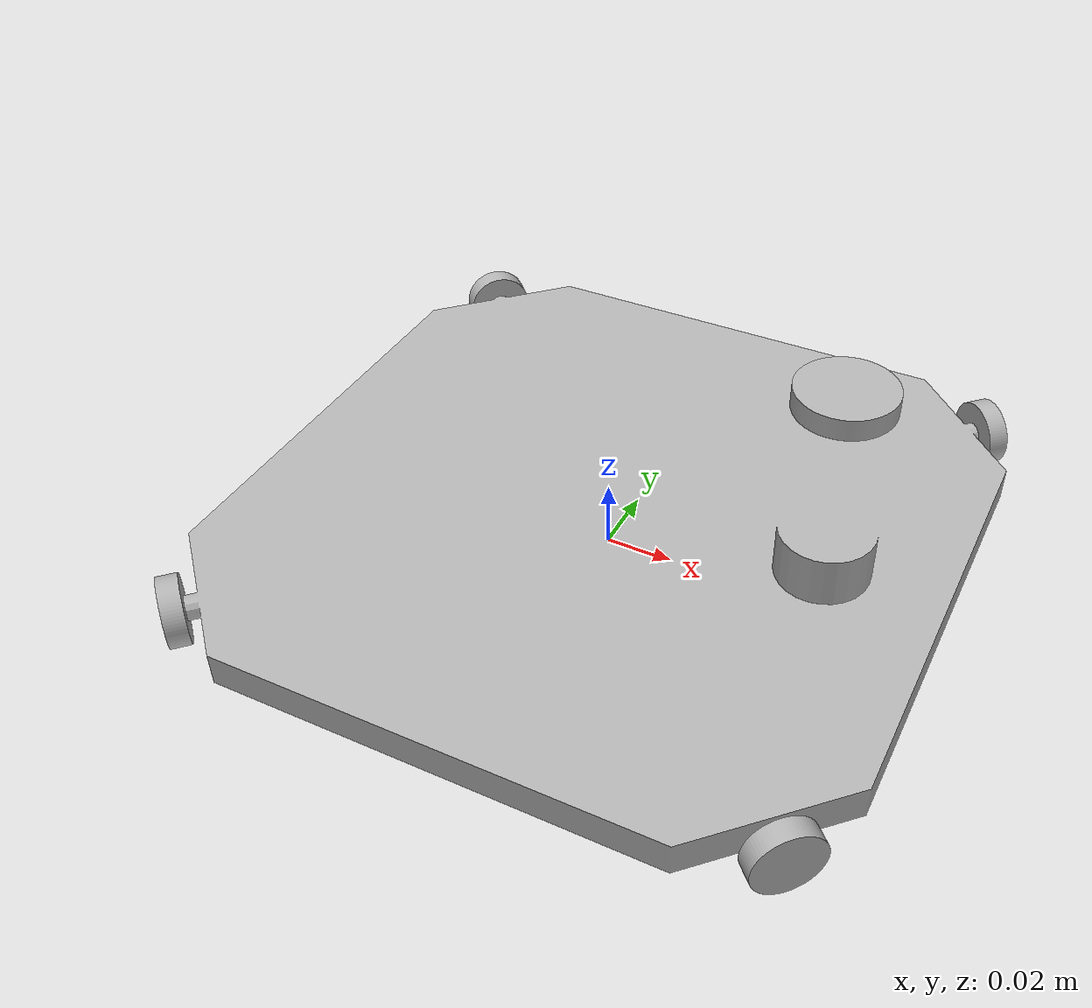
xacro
<?xml version="1.0" ?>
<robot name="fwomni" xmlns:xacro="http://www.ros.org/wiki/xacro">

<xacro:include filename="$(find fwomni)/urdf/materials.xacro" />
<xacro:include filename="$(find fwomni)/urdf/fwomni.trans" />
<xacro:include filename="$(find fwomni)/urdf/fwomni.gazebo" />

<link name="base_footprint">
</link>

<link name="base_link">
  <inertial>
    <origin xyz="0.0014510929492462577 -1.1820705140781097e-17 0.00527905633638948" rpy="0 0 0"/>
    <mass value="32.019927036453307"/>
    <inertia ixx="0.009026" iyy="0.009305" izz="0.018259" ixy="-0.0" iyz="-0.0" ixz="-5.4e-05"/>
  </inertial>
  <visual>
    <origin xyz="0 0 0.005" rpy="0 0 0"/>
    <geometry>
      <mesh filename="package://fwomni/meshes/base_link.stl" scale="0.001 0.001 0.001"/>
    </geometry>
    <material name="silver"/>
  </visual>
  <collision>
    <origin xyz="0 0 0.005" rpy="0 0 0"/>
    <geometry>
      <mesh filename="package://fwomni/meshes/base_link.stl" scale="0.001 0.001 0.001"/>
    </geometry>
  </collision>
</link>

<link name="rplidar">
  <inertial>
    <origin xyz="0.0 0.0 0.0030000000000000027" rpy="0 0 0"/>
    <mass value="0.02696735279859846"/>
    <inertia ixx="1e-06" iyy="1e-06" izz="2e-06" ixy="0.0" iyz="0.0" ixz="-0.0"/>
  </inertial>
  <visual>
    <origin xyz="-0.065 -0.0 -0.025" rpy="0 0 0"/>
    <geometry>
      <mesh filename="package://fwomni/meshes/rplidar.stl" scale="0.001 0.001 0.001"/>
    </geometry>
    <material name="silver"/>
  </visual>
  <collision>
    <origin xyz="-0.065 -0.0 -0.025" rpy="0 0 0"/>
    <geometry>
      <mesh filename="package://fwomni/meshes/rplidar.stl" scale="0.001 0.001 0.001"/>
    </geometry>
  </collision>
</link>

<link name="front_right">
  <inertial>
    <origin xyz="0.0030000000000000014 -2.220446049250313e-18 1.1779832153568586e-18" rpy="0 0 0"/>
    <mass value="0.01479690139840792"/>
    <inertia ixx="0.0" iyy="1e-06" izz="0.0" ixy="-0.0" iyz="-0.0" ixz="0.0"/>
  </inertial>
  <visual>
    <origin xyz="0 0 0" rpy="0 0 -1.5708"/>
    <geometry>
      <mesh filename="package://fwomni/meshes/wheel.stl" scale="0.001 0.001 0.001"/>
    </geometry>
    <material name="silver"/>
  </visual>
  <collision>
    <origin xyz="0 0 0" rpy="0 0 -1.5708"/>
    <geometry>
      <mesh filename="package://fwomni/meshes/wheel.stl" scale="0.001 0.001 0.001"/>
    </geometry>
  </collision>
</link>

<link name="front_left">
  <inertial>
    <origin xyz="0.0030000000000000014 -2.220446049250313e-18 1.1779832153568586e-18" rpy="0 0 0"/>
    <mass value="0.01479690139840792"/>
    <inertia ixx="0.0" iyy="1e-06" izz="0.0" ixy="-0.0" iyz="-0.0" ixz="0.0"/>
  </inertial>
  <visual>
    <origin xyz="0 0 0" rpy="0 0 -1.5708"/>
    <geometry>
      <mesh filename="package://fwomni/meshes/wheel.stl" scale="0.001 0.001 0.001"/>
    </geometry>
    <material name="silver"/>
  </visual>
  <collision>
    <origin xyz="0 0 0" rpy="0 0 -1.5708"/>
    <geometry>
      <mesh filename="package://fwomni/meshes/wheel.stl" scale="0.001 0.001 0.001"/>
    </geometry>
  </collision>
</link>

<link name="rear_left">
  <inertial>
    <origin xyz="0.0030000000000000014 -2.220446049250313e-18 1.1779832153568586e-18" rpy="0 0 0"/>
    <mass value="0.01479690139840792"/>
    <inertia ixx="0.0" iyy="1e-06" izz="0.0" ixy="-0.0" iyz="-0.0" ixz="0.0"/>
  </inertial>
  <visual>
    <origin xyz="0 0 0" rpy="0 0 -1.5708"/>
    <geometry>
      <mesh filename="package://fwomni/meshes/wheel.stl" scale="0.001 0.001 0.001"/>
    </geometry>
    <material name="silver"/>
  </visual>
  <collision>
    <origin xyz="0 0 0" rpy="0 0 -1.5708"/>
    <geometry>
      <mesh filename="package://fwomni/meshes/wheel.stl" scale="0.001 0.001 0.001"/>
    </geometry>
  </collision>
</link>

<link name="rear_right">
  <inertial>
    <origin xyz="0.0030000000000000014 -2.220446049250313e-18 1.1779832153568586e-18" rpy="0 0 0"/>
    <mass value="0.01479690139840792"/>
    <inertia ixx="0.0" iyy="1e-06" izz="0.0" ixy="-0.0" iyz="-0.0" ixz="0.0"/>
  </inertial>
  <visual>
    <origin xyz="0 0 0" rpy="0 0 -1.5708"/>
    <geometry>
      <mesh filename="package://fwomni/meshes/wheel.stl" scale="0.001 0.001 0.001"/>
    </geometry>
    <material name="silver"/>
  </visual>
  <collision>
    <origin xyz="0 0 0" rpy="0 0 -1.5708"/>
    <geometry>
      <mesh filename="package://fwomni/meshes/wheel.stl" scale="0.001 0.001 0.001"/>
    </geometry>
  </collision>
</link>

<joint name="Rigid1" type="fixed">
  <origin xyz="0 0 0" rpy="0 0 0"/>
  <parent link="base_footprint"/>
  <child link="base_link"/>
</joint>

<joint name="Rigid2" type="fixed">
  <origin xyz="0.065 0.0 0.07" rpy="0 0 0"/>
  <parent link="base_link"/>
  <child link="rplidar"/>
</joint>

<joint name="Cont1" type="continuous">
  <origin xyz="0.085328 -0.085328 0.01" rpy="0 0 0.785398"/>
  <parent link="base_link"/>
  <child link="front_right"/>
  <axis xyz="0 1 0"/>
</joint>

<joint name="Cont2" type="continuous">
  <origin xyz="0.085328 0.085328 0.01" rpy="0 0 2.35619"/>
  <parent link="base_link"/>
  <child link="front_left"/>
  <axis xyz="0 1 0"/>
</joint>

<joint name="Cont3" type="continuous">
  <origin xyz="-0.085328 0.085328 0.01" rpy="0 0 -2.35619"/>
  <parent link="base_link"/>
  <child link="rear_left"/>
  <axis xyz="0 1 0"/>
</joint>

<joint name="Cont4" type="continuous">
  <origin xyz="-0.085328 -0.085328 0.01" rpy="0 0 -0.785398"/>
  <parent link="base_link"/>
  <child link="rear_right"/>
  <axis xyz="0 1 0"/>
</joint>

</robot>

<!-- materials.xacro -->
<robot name="fwomni" xmlns:xacro="http://www.ros.org/wiki/xacro" >

<material name="silver">
  <color rgba="0.700 0.700 0.700 1.000"/>
</material>

</robot>

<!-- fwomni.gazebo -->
<robot name="fwomni" xmlns:xacro="http://www.ros.org/wiki/xacro" >

<xacro:property name="body_color" value="Gazebo/Silver" />

<gazebo reference="base_link">
  <material>${body_color}</material>
  <mu1>0.2</mu1>
  <mu2>0.2</mu2>
  <selfCollide>true</selfCollide>
  <gravity>true</gravity>
</gazebo>

<gazebo reference="rplidar">
  <material>${body_color}</material>
  <mu1>0.2</mu1>
  <mu2>0.2</mu2>
  <selfCollide>true</selfCollide>
</gazebo>

<gazebo reference="front_right">
  <material>${body_color}</material>
  <mu1>0.2</mu1>
  <mu2>0.2</mu2>
  <selfCollide>true</selfCollide>
  <gravity>true</gravity>
</gazebo>

<gazebo reference="front_left">
  <material>${body_color}</material>
  <mu1>0.2</mu1>
  <mu2>0.2</mu2>
  <selfCollide>true</selfCollide>
  <gravity>true</gravity>
</gazebo>

<gazebo reference="rear_left">
  <material>${body_color}</material>
  <mu1>0.2</mu1>
  <mu2>0.2</mu2>
  <selfCollide>true</selfCollide>
  <gravity>true</gravity>
</gazebo>

<gazebo reference="rear_right">
  <material>${body_color}</material>
  <mu1>0.2</mu1>
  <mu2>0.2</mu2>
  <selfCollide>true</selfCollide>
  <gravity>true</gravity>
</gazebo>

<gazebo>
  <plugin filename="libgazebo_ros_planar_move.so" name="mecanum_drive">
    <commandTopic>cmd_vel</commandTopic>
    <odometryTopic>odom</odometryTopic>
    <odometryFrame>odom</odometryFrame>
    <odometryRate>100.0</odometryRate>
    <robotBaseFrame>base_footprint</robotBaseFrame>
    <publishTF>True</publishTF>
  </plugin>
</gazebo>

<gazebo reference="rplidar">
  <sensor type="ray" name="head_hokuyo_sensor">
    <visualize>false</visualize>
    <update_rate>20</update_rate>
    <ray>
      <scan>
        <horizontal>
          <samples>1400</samples>
          <resolution>1</resolution>
          <min_angle>-3.14159</min_angle>
          <max_angle>3.14159</max_angle>
        </horizontal>
      </scan>
      <range>
        <min>0.05</min>
        <max>12.0</max>
        <resolution>0.01</resolution>
      </range>
      <noise>
        <type>gaussian</type>
        <mean>0.0</mean>
        <stddev>0.01</stddev>
      </noise>
    </ray>
    <plugin name="gazebo_ros_head_hokuyo_controller" filename="libgazebo_ros_laser.so">
      <topicName>laser/scan</topicName>
      <frameName>rplidar</frameName>
    </plugin>
  </sensor>
</gazebo>

</robot>
